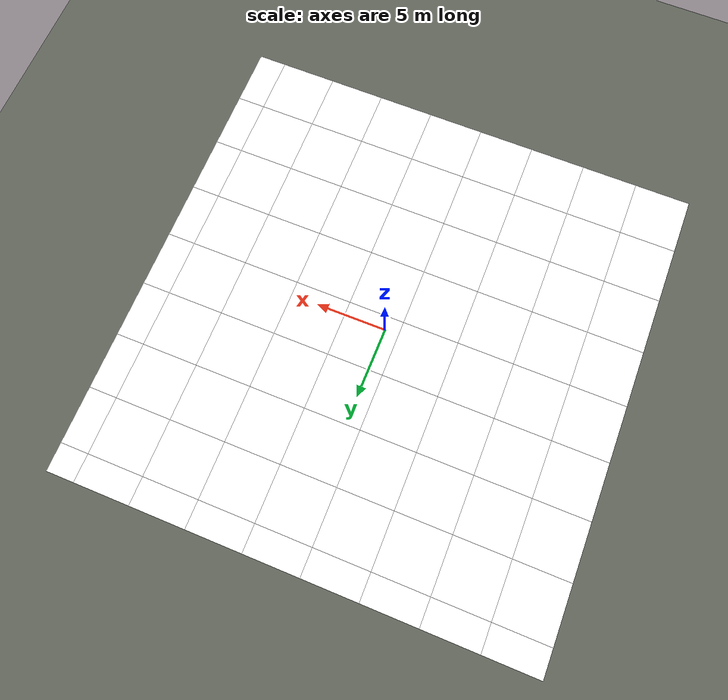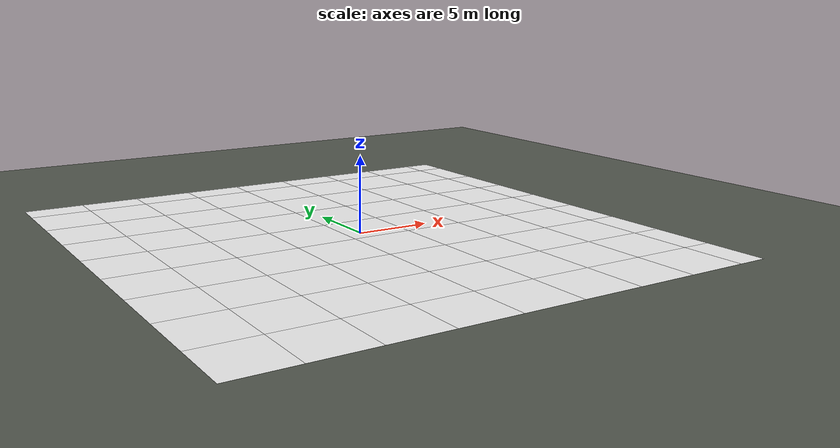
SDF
<sdf version="1.9">
 <world name="park_0">
  <model name="ground_plane">
   <static>true</static>
   <link name="link">
    <collision name="collision">
     <geometry><plane><normal>0 0 1</normal><size>300.000 300.000</size></plane></geometry>
     <surface><friction><ode><mu>1.0</mu><mu2>1.0</mu2></ode></friction></surface>
    </collision>
    <visual name="visual">
     <geometry><plane><normal>0 0 1</normal><size>300.000 300.000</size></plane></geometry>
     <material>
      <ambient>0.350 0.370 0.330 1</ambient>
      <diffuse>0.350 0.370 0.330 1</diffuse>
      <specular>0.08 0.08 0.08 1</specular>
     </material>
    </visual>
   </link>
  </model>
  <model name="ground_1">
   <static>true</static>
   <link name="link">
    <visual name="v0">
     <pose>-15.000 -15.000 0.004 0.0000 0.0000 0.0000</pose>
     <geometry><plane><normal>0 0 1</normal><size>4.000 4.000</size></plane></geometry>
     <material>
      <ambient>1.000 1.000 1.000 1</ambient>
      <diffuse>1.000 1.000 1.000 1</diffuse>
      <specular>0.08 0.08 0.08 1</specular>
      <pbr>
       <metal>
        <albedo_map>model://omnivla_textures/materials/textures/grass.png</albedo_map>
        <roughness>0.95</roughness>
        <metalness>0.0</metalness>
       </metal>
      </pbr>
     </material>
    </visual>
    <visual name="v1">
     <pose>-15.000 -11.000 0.004 0.0000 0.0000 0.0000</pose>
     <geometry><plane><normal>0 0 1</normal><size>4.000 4.000</size></plane></geometry>
     <material>
      <ambient>1.000 1.000 1.000 1</ambient>
      <diffuse>1.000 1.000 1.000 1</diffuse>
      <specular>0.08 0.08 0.08 1</specular>
      <pbr>
       <metal>
        <albedo_map>model://omnivla_textures/materials/textures/grass.png</albedo_map>
        <roughness>0.95</roughness>
        <metalness>0.0</metalness>
       </metal>
      </pbr>
     </material>
    </visual>
    <visual name="v2">
     <pose>-15.000 -7.000 0.004 0.0000 0.0000 0.0000</pose>
     <geometry><plane><normal>0 0 1</normal><size>4.000 4.000</size></plane></geometry>
     <material>
      <ambient>1.000 1.000 1.000 1</ambient>
      <diffuse>1.000 1.000 1.000 1</diffuse>
      <specular>0.08 0.08 0.08 1</specular>
      <pbr>
       <metal>
        <albedo_map>model://omnivla_textures/materials/textures/grass.png</albedo_map>
        <roughness>0.95</roughness>
        <metalness>0.0</metalness>
       </metal>
      </pbr>
     </material>
    </visual>
    <visual name="v3">
     <pose>-15.000 -3.000 0.004 0.0000 0.0000 0.0000</pose>
     <geometry><plane><normal>0 0 1</normal><size>4.000 4.000</size></plane></geometry>
     <material>
      <ambient>1.000 1.000 1.000 1</ambient>
      <diffuse>1.000 1.000 1.000 1</diffuse>
      <specular>0.08 0.08 0.08 1</specular>
      <pbr>
       <metal>
        <albedo_map>model://omnivla_textures/materials/textures/grass.png</albedo_map>
        <roughness>0.95</roughness>
        <metalness>0.0</metalness>
       </metal>
      </pbr>
     </material>
    </visual>
    <visual name="v4">
     <pose>-15.000 1.000 0.004 0.0000 0.0000 0.0000</pose>
     <geometry><plane><normal>0 0 1</normal><size>4.000 4.000</size></plane></geometry>
     <material>
      <ambient>1.000 1.000 1.000 1</ambient>
      <diffuse>1.000 1.000 1.000 1</diffuse>
      <specular>0.08 0.08 0.08 1</specular>
      <pbr>
       <metal>
        <albedo_map>model://omnivla_textures/materials/textures/grass.png</albedo_map>
        <roughness>0.95</roughness>
        <metalness>0.0</metalness>
       </metal>
      </pbr>
     </material>
    </visual>
    <visual name="v5">
     <pose>-15.000 5.000 0.004 0.0000 0.0000 0.0000</pose>
     <geometry><plane><normal>0 0 1</normal><size>4.000 4.000</size></plane></geometry>
     <material>
      <ambient>1.000 1.000 1.000 1</ambient>
      <diffuse>1.000 1.000 1.000 1</diffuse>
      <specular>0.08 0.08 0.08 1</specular>
      <pbr>
       <metal>
        <albedo_map>model://omnivla_textures/materials/textures/grass.png</albedo_map>
        <roughness>0.95</roughness>
        <metalness>0.0</metalness>
       </metal>
      </pbr>
     </material>
    </visual>
    <visual name="v6">
     <pose>-15.000 9.000 0.004 0.0000 0.0000 0.0000</pose>
     <geometry><plane><normal>0 0 1</normal><size>4.000 4.000</size></plane></geometry>
     <material>
      <ambient>1.000 1.000 1.000 1</ambient>
      <diffuse>1.000 1.000 1.000 1</diffuse>
      <specular>0.08 0.08 0.08 1</specular>
      <pbr>
       <metal>
        <albedo_map>model://omnivla_textures/materials/textures/grass.png</albedo_map>
        <roughness>0.95</roughness>
        <metalness>0.0</metalness>
       </metal>
      </pbr>
     </material>
    </visual>
    <visual name="v7">
     <pose>-15.000 13.000 0.004 0.0000 0.0000 0.0000</pose>
     <geometry><plane><normal>0 0 1</normal><size>4.000 4.000</size></plane></geometry>
     <material>
      <ambient>1.000 1.000 1.000 1</ambient>
      <diffuse>1.000 1.000 1.000 1</diffuse>
      <specular>0.08 0.08 0.08 1</specular>
      <pbr>
       <metal>
        <albedo_map>model://omnivla_textures/materials/textures/grass.png</albedo_map>
        <roughness>0.95</roughness>
        <metalness>0.0</metalness>
       </metal>
      </pbr>
     </material>
    </visual>
    <visual name="v8">
     <pose>-15.000 16.000 0.004 0.0000 0.0000 0.0000</pose>
     <geometry><plane><normal>0 0 1</normal><size>4.000 2.000</size></plane></geometry>
     <material>
      <ambient>1.000 1.000 1.000 1</ambient>
      <diffuse>1.000 1.000 1.000 1</diffuse>
      <specular>0.08 0.08 0.08 1</specular>
      <pbr>
       <metal>
        <albedo_map>model://omnivla_textures/materials/textures/grass.png</albedo_map>
        <roughness>0.95</roughness>
        <metalness>0.0</metalness>
       </metal>
      </pbr>
     </material>
    </visual>
    <visual name="v9">
     <pose>-11.000 -15.000 0.004 0.0000 0.0000 0.0000</pose>
     <geometry><plane><normal>0 0 1</normal><size>4.000 4.000</size></plane></geometry>
     <material>
      <ambient>1.000 1.000 1.000 1</ambient>
      <diffuse>1.000 1.000 1.000 1</diffuse>
      <specular>0.08 0.08 0.08 1</specular>
      <pbr>
       <metal>
        <albedo_map>model://omnivla_textures/materials/textures/grass.png</albedo_map>
        <roughness>0.95</roughness>
        <metalness>0.0</metalness>
       </metal>
      </pbr>
     </material>
    </visual>
    <visual name="v10">
     <pose>-11.000 -11.000 0.004 0.0000 0.0000 0.0000</pose>
     <geometry><plane><normal>0 0 1</normal><size>4.000 4.000</size></plane></geometry>
     <material>
      <ambient>1.000 1.000 1.000 1</ambient>
      <diffuse>1.000 1.000 1.000 1</diffuse>
      <specular>0.08 0.08 0.08 1</specular>
      <pbr>
       <metal>
        <albedo_map>model://omnivla_textures/materials/textures/grass.png</albedo_map>
        <roughness>0.95</roughness>
        <metalness>0.0</metalness>
       </metal>
      </pbr>
     </material>
    </visual>
    <visual name="v11">
     <pose>-11.000 -7.000 0.004 0.0000 0.0000 0.0000</pose>
     <geometry><plane><normal>0 0 1</normal><size>4.000 4.000</size></plane></geometry>
     <material>
      <ambient>1.000 1.000 1.000 1</ambient>
      <diffuse>1.000 1.000 1.000 1</diffuse>
      <specular>0.08 0.08 0.08 1</specular>
      <pbr>
       <metal>
        <albedo_map>model://omnivla_textures/materials/textures/grass.png</albedo_map>
        <roughness>0.95</roughness>
        <metalness>0.0</metalness>
       </metal>
      </pbr>
     </material>
    </visual>
    <visual name="v12">
     <pose>-11.000 -3.000 0.004 0.0000 0.0000 0.0000</pose>
     <geometry><plane><normal>0 0 1</normal><size>4.000 4.000</size></plane></geometry>
     <material>
      <ambient>1.000 1.000 1.000 1</ambient>
      <diffuse>1.000 1.000 1.000 1</diffuse>
      <specular>0.08 0.08 0.08 1</specular>
      <pbr>
       <metal>
        <albedo_map>model://omnivla_textures/materials/textures/grass.png</albedo_map>
        <roughness>0.95</roughness>
        <metalness>0.0</metalness>
       </metal>
      </pbr>
     </material>
    </visual>
    <visual name="v13">
     <pose>-11.000 1.000 0.004 0.0000 0.0000 0.0000</pose>
     <geometry><plane><normal>0 0 1</normal><size>4.000 4.000</size></plane></geometry>
     <material>
      <ambient>1.000 1.000 1.000 1</ambient>
      <diffuse>1.000 1.000 1.000 1</diffuse>
      <specular>0.08 0.08 0.08 1</specular>
      <pbr>
       <metal>
        <albedo_map>model://omnivla_textures/materials/textures/grass.png</albedo_map>
        <roughness>0.95</roughness>
        <metalness>0.0</metalness>
       </metal>
      </pbr>
     </material>
    </visual>
    <visual name="v14">
     <pose>-11.000 5.000 0.004 0.0000 0.0000 0.0000</pose>
     <geometry><plane><normal>0 0 1</normal><size>4.000 4.000</size></plane></geometry>
     <material>
      <ambient>1.000 1.000 1.000 1</ambient>
      <diffuse>1.000 1.000 1.000 1</diffuse>
      <specular>0.08 0.08 0.08 1</specular>
      <pbr>
       <metal>
        <albedo_map>model://omnivla_textures/materials/textures/grass.png</albedo_map>
        <roughness>0.95</roughness>
        <metalness>0.0</metalness>
       </metal>
      </pbr>
     </material>
    </visual>
    <visual name="v15">
     <pose>-11.000 9.000 0.004 0.0000 0.0000 0.0000</pose>
     <geometry><plane><normal>0 0 1</normal><size>4.000 4.000</size></plane></geometry>
     <material>
      <ambient>1.000 1.000 1.000 1</ambient>
      <diffuse>1.000 1.000 1.000 1</diffuse>
      <specular>0.08 0.08 0.08 1</specular>
      <pbr>
       <metal>
        <albedo_map>model://omnivla_textures/materials/textures/grass.png</albedo_map>
        <roughness>0.95</roughness>
        <metalness>0.0</metalness>
       </metal>
      </pbr>
     </material>
    </visual>
    <visual name="v16">
     <pose>-11.000 13.000 0.004 0.0000 0.0000 0.0000</pose>
     <geometry><plane><normal>0 0 1</normal><size>4.000 4.000</size></plane></geometry>
     <material>
      <ambient>1.000 1.000 1.000 1</ambient>
      <diffuse>1.000 1.000 1.000 1</diffuse>
      <specular>0.08 0.08 0.08 1</specular>
      <pbr>
       <metal>
        <albedo_map>model://omnivla_textures/materials/textures/grass.png</albedo_map>
        <roughness>0.95</roughness>
        <metalness>0.0</metalness>
       </metal>
      </pbr>
     </material>
    </visual>
    <visual name="v17">
     <pose>-11.000 16.000 0.004 0.0000 0.0000 0.0000</pose>
     <geometry><plane><normal>0 0 1</normal><size>4.000 2.000</size></plane></geometry>
     <material>
      <ambient>1.000 1.000 1.000 1</ambient>
      <diffuse>1.000 1.000 1.000 1</diffuse>
      <specular>0.08 0.08 0.08 1</specular>
      <pbr>
       <metal>
        <albedo_map>model://omnivla_textures/materials/textures/grass.png</albedo_map>
        <roughness>0.95</roughness>
        <metalness>0.0</metalness>
       </metal>
      </pbr>
     </material>
    </visual>
    <visual name="v18">
     <pose>-7.000 -15.000 0.004 0.0000 0.0000 0.0000</pose>
     <geometry><plane><normal>0 0 1</normal><size>4.000 4.000</size></plane></geometry>
     <material>
      <ambient>1.000 1.000 1.000 1</ambient>
      <diffuse>1.000 1.000 1.000 1</diffuse>
      <specular>0.08 0.08 0.08 1</specular>
      <pbr>
       <metal>
        <albedo_map>model://omnivla_textures/materials/textures/grass.png</albedo_map>
        <roughness>0.95</roughness>
        <metalness>0.0</metalness>
       </metal>
      </pbr>
     </material>
    </visual>
    <visual name="v19">
     <pose>-7.000 -11.000 0.004 0.0000 0.0000 0.0000</pose>
     <geometry><plane><normal>0 0 1</normal><size>4.000 4.000</size></plane></geometry>
     <material>
      <ambient>1.000 1.000 1.000 1</ambient>
      <diffuse>1.000 1.000 1.000 1</diffuse>
      <specular>0.08 0.08 0.08 1</specular>
      <pbr>
       <metal>
        <albedo_map>model://omnivla_textures/materials/textures/grass.png</albedo_map>
        <roughness>0.95</roughness>
        <metalness>0.0</metalness>
       </metal>
      </pbr>
     </material>
    </visual>
    <visual name="v20">
     <pose>-7.000 -7.000 0.004 0.0000 0.0000 0.0000</pose>
     <geometry><plane><normal>0 0 1</normal><size>4.000 4.000</size></plane></geometry>
     <material>
      <ambient>1.000 1.000 1.000 1</ambient>
      <diffuse>1.000 1.000 1.000 1</diffuse>
      <specular>0.08 0.08 0.08 1</specular>
      <pbr>
       <metal>
        <albedo_map>model://omnivla_textures/materials/textures/grass.png</albedo_map>
        <roughness>0.95</roughness>
        <metalness>0.0</metalness>
       </metal>
      </pbr>
     </material>
    </visual>
    <visual name="v21">
     <pose>-7.000 -3.000 0.004 0.0000 0.0000 0.0000</pose>
     <geometry><plane><normal>0 0 1</normal><size>4.000 4.000</size></plane></geometry>
     <material>
      <ambient>1.000 1.000 1.000 1</ambient>
      <diffuse>1.000 1.000 1.000 1</diffuse>
      <specular>0.08 0.08 0.08 1</specular>
      <pbr>
       <metal>
        <albedo_map>model://omnivla_textures/materials/textures/grass.png</albedo_map>
        <roughness>0.95</roughness>
        <metalness>0.0</metalness>
       </metal>
      </pbr>
     </material>
    </visual>
    <visual name="v22">
     <pose>-7.000 1.000 0.004 0.0000 0.0000 0.0000</pose>
     <geometry><plane><normal>0 0 1</normal><size>4.000 4.000</size></plane></geometry>
     <material>
      <ambient>1.000 1.000 1.000 1</ambient>
      <diffuse>1.000 1.000 1.000 1</diffuse>
      <specular>0.08 0.08 0.08 1</specular>
      <pbr>
       <metal>
        <albedo_map>model://omnivla_textures/materials/textures/grass.png</albedo_map>
        <roughness>0.95</roughness>
        <metalness>0.0</metalness>
       </metal>
      </pbr>
     </material>
    </visual>
    <visual name="v23">
     <pose>-7.000 5.000 0.004 0.0000 0.0000 0.0000</pose>
     <geometry><plane><normal>0 0 1</normal><size>4.000 4.000</size></plane></geometry>
     <material>
      <ambient>1.000 1.000 1.000 1</ambient>
      <diffuse>1.000 1.000 1.000 1</diffuse>
      <specular>0.08 0.08 0.08 1</specular>
      <pbr>
       <metal>
        <albedo_map>model://omnivla_textures/materials/textures/grass.png</albedo_map>
        <roughness>0.95</roughness>
        <metalness>0.0</metalness>
       </metal>
      </pbr>
     </material>
    </visual>
    <visual name="v24">
     <pose>-7.000 9.000 0.004 0.0000 0.0000 0.0000</pose>
     <geometry><plane><normal>0 0 1</normal><size>4.000 4.000</size></plane></geometry>
     <material>
      <ambient>1.000 1.000 1.000 1</ambient>
      <diffuse>1.000 1.000 1.000 1</diffuse>
      <specular>0.08 0.08 0.08 1</specular>
      <pbr>
       <metal>
        <albedo_map>model://omnivla_textures/materials/textures/grass.png</albedo_map>
        <roughness>0.95</roughness>
        <metalness>0.0</metalness>
       </metal>
      </pbr>
     </material>
    </visual>
    <visual name="v25">
     <pose>-7.000 13.000 0.004 0.0000 0.0000 0.0000</pose>
     <geometry><plane><normal>0 0 1</normal><size>4.000 4.000</size></plane></geometry>
     <material>
      <ambient>1.000 1.000 1.000 1</ambient>
      <diffuse>1.000 1.000 1.000 1</diffuse>
      <specular>0.08 0.08 0.08 1</specular>
      <pbr>
       <metal>
        <albedo_map>model://omnivla_textures/materials/textures/grass.png</albedo_map>
        <roughness>0.95</roughness>
        <metalness>0.0</metalness>
       </metal>
      </pbr>
     </material>
    </visual>
    <visual name="v26">
     <pose>-7.000 16.000 0.004 0.0000 0.0000 0.0000</pose>
     <geometry><plane><normal>0 0 1</normal><size>4.000 2.000</size></plane></geometry>
     <material>
      <ambient>1.000 1.000 1.000 1</ambient>
      <diffuse>1.000 1.000 1.000 1</diffuse>
      <specular>0.08 0.08 0.08 1</specular>
      <pbr>
       <metal>
        <albedo_map>model://omnivla_textures/materials/textures/grass.png</albedo_map>
        <roughness>0.95</roughness>
        <metalness>0.0</metalness>
       </metal>
      </pbr>
     </material>
    </visual>
    <visual name="v27">
     <pose>-3.000 -15.000 0.004 0.0000 0.0000 0.0000</pose>
     <geometry><plane><normal>0 0 1</normal><size>4.000 4.000</size></plane></geometry>
     <material>
      <ambient>1.000 1.000 1.000 1</ambient>
      <diffuse>1.000 1.000 1.000 1</diffuse>
      <specular>0.08 0.08 0.08 1</specular>
      <pbr>
       <metal>
        <albedo_map>model://omnivla_textures/materials/textures/grass.png</albedo_map>
        <roughness>0.95</roughness>
        <metalness>0.0</metalness>
       </metal>
      </pbr>
     </material>
    </visual>
    <visual name="v28">
     <pose>-3.000 -11.000 0.004 0.0000 0.0000 0.0000</pose>
     <geometry><plane><normal>0 0 1</normal><size>4.000 4.000</size></plane></geometry>
     <material>
      <ambient>1.000 1.000 1.000 1</ambient>
      <diffuse>1.000 1.000 1.000 1</diffuse>
      <specular>0.08 0.08 0.08 1</specular>
      <pbr>
       <metal>
        <albedo_map>model://omnivla_textures/materials/textures/grass.png</albedo_map>
        <roughness>0.95</roughness>
        <metalness>0.0</metalness>
       </metal>
      </pbr>
     </material>
    </visual>
    <visual name="v29">
     <pose>-3.000 -7.000 0.004 0.0000 0.0000 0.0000</pose>
     <geometry><plane><normal>0 0 1</normal><size>4.000 4.000</size></plane></geometry>
     <material>
      <ambient>1.000 1.000 1.000 1</ambient>
      <diffuse>1.000 1.000 1.000 1</diffuse>
      <specular>0.08 0.08 0.08 1</specular>
      <pbr>
       <metal>
        <albedo_map>model://omnivla_textures/materials/textures/grass.png</albedo_map>
        <roughness>0.95</roughness>
        <metalness>0.0</metalness>
       </metal>
      </pbr>
     </material>
    </visual>
    <visual name="v30">
     <pose>-3.000 -3.000 0.004 0.0000 0.0000 0.0000</pose>
     <geometry><plane><normal>0 0 1</normal><size>4.000 4.000</size></plane></geometry>
     <material>
      <ambient>1.000 1.000 1.000 1</ambient>
      <diffuse>1.000 1.000 1.000 1</diffuse>
      <specular>0.08 0.08 0.08 1</specular>
      <pbr>
       <metal>
        <albedo_map>model://omnivla_textures/materials/textures/grass.png</albedo_map>
        <roughness>0.95</roughness>
        <metalness>0.0</metalness>
       </metal>
      </pbr>
     </material>
    </visual>
    <visual name="v31">
     <pose>-3.000 1.000 0.004 0.0000 0.0000 0.0000</pose>
     <geometry><plane><normal>0 0 1</normal><size>4.000 4.000</size></plane></geometry>
     <material>
      <ambient>1.000 1.000 1.000 1</ambient>
      <diffuse>1.000 1.000 1.000 1</diffuse>
      <specular>0.08 0.08 0.08 1</specular>
      <pbr>
       <metal>
        <albedo_map>model://omnivla_textures/materials/textures/grass.png</albedo_map>
        <roughness>0.95</roughness>
        <metalness>0.0</metalness>
       </metal>
      </pbr>
     </material>
    </visual>
    <visual name="v32">
     <pose>-3.000 5.000 0.004 0.0000 0.0000 0.0000</pose>
     <geometry><plane><normal>0 0 1</normal><size>4.000 4.000</size></plane></geometry>
     <material>
      <ambient>1.000 1.000 1.000 1</ambient>
      <diffuse>1.000 1.000 1.000 1</diffuse>
      <specular>0.08 0.08 0.08 1</specular>
      <pbr>
       <metal>
        <albedo_map>model://omnivla_textures/materials/textures/grass.png</albedo_map>
        <roughness>0.95</roughness>
        <metalness>0.0</metalness>
       </metal>
      </pbr>
     </material>
    </visual>
    <visual name="v33">
     <pose>-3.000 9.000 0.004 0.0000 0.0000 0.0000</pose>
     <geometry><plane><normal>0 0 1</normal><size>4.000 4.000</size></plane></geometry>
     <material>
      <ambient>1.000 1.000 1.000 1</ambient>
      <diffuse>1.000 1.000 1.000 1</diffuse>
      <specular>0.08 0.08 0.08 1</specular>
      <pbr>
       <metal>
        <albedo_map>model://omnivla_textures/materials/textures/grass.png</albedo_map>
        <roughness>0.95</roughness>
        <metalness>0.0</metalness>
       </metal>
      </pbr>
     </material>
    </visual>
    <visual name="v34">
     <pose>-3.000 13.000 0.004 0.0000 0.0000 0.0000</pose>
     <geometry><plane><normal>0 0 1</normal><size>4.000 4.000</size></plane></geometry>
     <material>
      <ambient>1.000 1.000 1.000 1</ambient>
      <diffuse>1.000 1.000 1.000 1</diffuse>
      <specular>0.08 0.08 0.08 1</specular>
      <pbr>
       <metal>
        <albedo_map>model://omnivla_textures/materials/textures/grass.png</albedo_map>
        <roughness>0.95</roughness>
        <metalness>0.0</metalness>
       </metal>
      </pbr>
     </material>
    </visual>
    <visual name="v35">
     <pose>-3.000 16.000 0.004 0.0000 0.0000 0.0000</pose>
     <geometry><plane><normal>0 0 1</normal><size>4.000 2.000</size></plane></geometry>
     <material>
      <ambient>1.000 1.000 1.000 1</ambient>
      <diffuse>1.000 1.000 1.000 1</diffuse>
      <specular>0.08 0.08 0.08 1</specular>
      <pbr>
       <metal>
        <albedo_map>model://omnivla_textures/materials/textures/grass.png</albedo_map>
        <roughness>0.95</roughness>
        <metalness>0.0</metalness>
       </metal>
      </pbr>
     </material>
    </visual>
    <visual name="v36">
     <pose>1.000 -15.000 0.004 0.0000 0.0000 0.0000</pose>
     <geometry><plane><normal>0 0 1</normal><size>4.000 4.000</size></plane></geometry>
     <material>
      <ambient>1.000 1.000 1.000 1</ambient>
      <diffuse>1.000 1.000 1.000 1</diffuse>
      <specular>0.08 0.08 0.08 1</specular>
      <pbr>
       <metal>
        <albedo_map>model://omnivla_textures/materials/textures/grass.png</albedo_map>
        <roughness>0.95</roughness>
        <metalness>0.0</metalness>
       </metal>
      </pbr>
     </material>
    </visual>
    <visual name="v37">
     <pose>1.000 -11.000 0.004 0.0000 0.0000 0.0000</pose>
     <geometry><plane><normal>0 0 1</normal><size>4.000 4.000</size></plane></geometry>
     <material>
      <ambient>1.000 1.000 1.000 1</ambient>
      <diffuse>1.000 1.000 1.000 1</diffuse>
      <specular>0.08 0.08 0.08 1</specular>
      <pbr>
       <metal>
        <albedo_map>model://omnivla_textures/materials/textures/grass.png</albedo_map>
        <roughness>0.95</roughness>
        <metalness>0.0</metalness>
       </metal>
      </pbr>
     </material>
    </visual>
    <visual name="v38">
     <pose>1.000 -7.000 0.004 0.0000 0.0000 0.0000</pose>
     <geometry><plane><normal>0 0 1</normal><size>4.000 4.000</size></plane></geometry>
     <material>
      <ambient>1.000 1.000 1.000 1</ambient>
      <diffuse>1.000 1.000 1.000 1</diffuse>
      <specular>0.08 0.08 0.08 1</specular>
      <pbr>
       <metal>
        <albedo_map>model://omnivla_textures/materials/textures/grass.png</albedo_map>
        <roughness>0.95</roughness>
        <metalness>0.0</metalness>
       </metal>
      </pbr>
     </material>
    </visual>
    <visual name="v39">
     <pose>1.000 -3.000 0.004 0.0000 0.0000 0.0000</pose>
     <geometry><plane><normal>0 0 1</normal><size>4.000 4.000</size></plane></geometry>
     <material>
      <ambient>1.000 1.000 1.000 1</ambient>
      <diffuse>1.000 1.000 1.000 1</diffuse>
      <specular>0.08 0.08 0.08 1</specular>
      <pbr>
       <metal>
        <albedo_map>model://omnivla_textures/materials/textures/grass.png</albedo_map>
        <roughness>0.95</roughness>
        <metalness>0.0</metalness>
       </metal>
      </pbr>
     </material>
    </visual>
    <visual name="v40">
     <pose>1.000 1.000 0.004 0.0000 0.0000 0.0000</pose>
     <geometry><plane><normal>0 0 1</normal><size>4.000 4.000</size></plane></geometry>
     <material>
      <ambient>1.000 1.000 1.000 1</ambient>
      <diffuse>1.000 1.000 1.000 1</diffuse>
      <specular>0.08 0.08 0.08 1</specular>
      <pbr>
       <metal>
        <albedo_map>model://omnivla_textures/materials/textures/grass.png</albedo_map>
        <roughness>0.95</roughness>
        <metalness>0.0</metalness>
       </metal>
      </pbr>
     </material>
    </visual>
    <visual name="v41">
     <pose>1.000 5.000 0.004 0.0000 0.0000 0.0000</pose>
     <geometry><plane><normal>0 0 1</normal><size>4.000 4.000</size></plane></geometry>
     <material>
      <ambient>1.000 1.000 1.000 1</ambient>
      <diffuse>1.000 1.000 1.000 1</diffuse>
      <specular>0.08 0.08 0.08 1</specular>
      <pbr>
       <metal>
        <albedo_map>model://omnivla_textures/materials/textures/grass.png</albedo_map>
        <roughness>0.95</roughness>
        <metalness>0.0</metalness>
       </metal>
      </pbr>
     </material>
    </visual>
    <visual name="v42">
     <pose>1.000 9.000 0.004 0.0000 0.0000 0.0000</pose>
     <geometry><plane><normal>0 0 1</normal><size>4.000 4.000</size></plane></geometry>
     <material>
      <ambient>1.000 1.000 1.000 1</ambient>
      <diffuse>1.000 1.000 1.000 1</diffuse>
      <specular>0.08 0.08 0.08 1</specular>
      <pbr>
       <metal>
        <albedo_map>model://omnivla_textures/materials/textures/grass.png</albedo_map>
        <roughness>0.95</roughness>
        <metalness>0.0</metalness>
       </metal>
      </pbr>
     </material>
    </visual>
    <visual name="v43">
     <pose>1.000 13.000 0.004 0.0000 0.0000 0.0000</pose>
     <geometry><plane><normal>0 0 1</normal><size>4.000 4.000</size></plane></geometry>
     <material>
      <ambient>1.000 1.000 1.000 1</ambient>
      <diffuse>1.000 1.000 1.000 1</diffuse>
      <specular>0.08 0.08 0.08 1</specular>
      <pbr>
       <metal>
        <albedo_map>model://omnivla_textures/materials/textures/grass.png</albedo_map>
        <roughness>0.95</roughness>
        <metalness>0.0</metalness>
       </metal>
      </pbr>
     </material>
    </visual>
    <visual name="v44">
     <pose>1.000 16.000 0.004 0.0000 0.0000 0.0000</pose>
     <geometry><plane><normal>0 0 1</normal><size>4.000 2.000</size></plane></geometry>
     <material>
      <ambient>1.000 1.000 1.000 1</ambient>
      <diffuse>1.000 1.000 1.000 1</diffuse>
      <specular>0.08 0.08 0.08 1</specular>
      <pbr>
       <metal>
        <albedo_map>model://omnivla_textures/materials/textures/grass.png</albedo_map>
        <roughness>0.95</roughness>
        <metalness>0.0</metalness>
       </metal>
      </pbr>
     </material>
    </visual>
    <visual name="v45">
     <pose>5.000 -15.000 0.004 0.0000 0.0000 0.0000</pose>
     <geometry><plane><normal>0 0 1</normal><size>4.000 4.000</size></plane></geometry>
     <material>
      <ambient>1.000 1.000 1.000 1</ambient>
      <diffuse>1.000 1.000 1.000 1</diffuse>
      <specular>0.08 0.08 0.08 1</specular>
      <pbr>
       <metal>
        <albedo_map>model://omnivla_textures/materials/textures/grass.png</albedo_map>
        <roughness>0.95</roughness>
        <metalness>0.0</metalness>
       </metal>
      </pbr>
     </material>
    </visual>
    <visual name="v46">
     <pose>5.000 -11.000 0.004 0.0000 0.0000 0.0000</pose>
     <geometry><plane><normal>0 0 1</normal><size>4.000 4.000</size></plane></geometry>
     <material>
      <ambient>1.000 1.000 1.000 1</ambient>
      <diffuse>1.000 1.000 1.000 1</diffuse>
      <specular>0.08 0.08 0.08 1</specular>
      <pbr>
       <metal>
        <albedo_map>model://omnivla_textures/materials/textures/grass.png</albedo_map>
        <roughness>0.95</roughness>
        <metalness>0.0</metalness>
       </metal>
      </pbr>
     </material>
    </visual>
    <visual name="v47">
     <pose>5.000 -7.000 0.004 0.0000 0.0000 0.0000</pose>
     <geometry><plane><normal>0 0 1</normal><size>4.000 4.000</size></plane></geometry>
     <material>
      <ambient>1.000 1.000 1.000 1</ambient>
      <diffuse>1.000 1.000 1.000 1</diffuse>
      <specular>0.08 0.08 0.08 1</specular>
      <pbr>
       <metal>
        <albedo_map>model://omnivla_textures/materials/textures/grass.png</albedo_map>
        <roughness>0.95</roughness>
        <metalness>0.0</metalness>
       </metal>
      </pbr>
     </material>
    </visual>
    <visual name="v48">
     <pose>5.000 -3.000 0.004 0.0000 0.0000 0.0000</pose>
     <geometry><plane><normal>0 0 1</normal><size>4.000 4.000</size></plane></geometry>
     <material>
      <ambient>1.000 1.000 1.000 1</ambient>
      <diffuse>1.000 1.000 1.000 1</diffuse>
      <specular>0.08 0.08 0.08 1</specular>
      <pbr>
       <metal>
        <albedo_map>model://omnivla_textures/materials/textures/grass.png</albedo_map>
        <roughness>0.95</roughness>
        <metalness>0.0</metalness>
       </metal>
      </pbr>
     </material>
    </visual>
    <visual name="v49">
     <pose>5.000 1.000 0.004 0.0000 0.0000 0.0000</pose>
     <geometry><plane><normal>0 0 1</normal><size>4.000 4.000</size></plane></geometry>
     <material>
      <ambient>1.000 1.000 1.000 1</ambient>
      <diffuse>1.000 1.000 1.000 1</diffuse>
      <specular>0.08 0.08 0.08 1</specular>
      <pbr>
       <metal>
        <albedo_map>model://omnivla_textures/materials/textures/grass.png</albedo_map>
        <roughness>0.95</roughness>
        <metalness>0.0</metalness>
       </metal>
      </pbr>
     </material>
    </visual>
    <visual name="v50">
     <pose>5.000 5.000 0.004 0.0000 0.0000 0.0000</pose>
     <geometry><plane><normal>0 0 1</normal><size>4.000 4.000</size></plane></geometry>
     <material>
      <ambient>1.000 1.000 1.000 1</ambient>
      <diffuse>1.000 1.000 1.000 1</diffuse>
      <specular>0.08 0.08 0.08 1</specular>
      <pbr>
       <metal>
        <albedo_map>model://omnivla_textures/materials/textures/grass.png</albedo_map>
        <roughness>0.95</roughness>
        <metalness>0.0</metalness>
       </metal>
      </pbr>
     </material>
    </visual>
    <visual name="v51">
     <pose>5.000 9.000 0.004 0.0000 0.0000 0.0000</pose>
     <geometry><plane><normal>0 0 1</normal><size>4.000 4.000</size></plane></geometry>
     <material>
      <ambient>1.000 1.000 1.000 1</ambient>
      <diffuse>1.000 1.000 1.000 1</diffuse>
      <specular>0.08 0.08 0.08 1</specular>
      <pbr>
       <metal>
        <albedo_map>model://omnivla_textures/materials/textures/grass.png</albedo_map>
        <roughness>0.95</roughness>
        <metalness>0.0</metalness>
       </metal>
      </pbr>
     </material>
    </visual>
    <visual name="v52">
     <pose>5.000 13.000 0.004 0.0000 0.0000 0.0000</pose>
     <geometry><plane><normal>0 0 1</normal><size>4.000 4.000</size></plane></geometry>
     <material>
      <ambient>1.000 1.000 1.000 1</ambient>
      <diffuse>1.000 1.000 1.000 1</diffuse>
      <specular>0.08 0.08 0.08 1</specular>
      <pbr>
       <metal>
        <albedo_map>model://omnivla_textures/materials/textures/grass.png</albedo_map>
        <roughness>0.95</roughness>
        <metalness>0.0</metalness>
       </metal>
      </pbr>
     </material>
    </visual>
    <visual name="v53">
     <pose>5.000 16.000 0.004 0.0000 0.0000 0.0000</pose>
     <geometry><plane><normal>0 0 1</normal><size>4.000 2.000</size></plane></geometry>
     <material>
      <ambient>1.000 1.000 1.000 1</ambient>
      <diffuse>1.000 1.000 1.000 1</diffuse>
      <specular>0.08 0.08 0.08 1</specular>
      <pbr>
       <metal>
        <albedo_map>model://omnivla_textures/materials/textures/grass.png</albedo_map>
        <roughness>0.95</roughness>
        <metalness>0.0</metalness>
       </metal>
      </pbr>
     </material>
    </visual>
    <visual name="v54">
     <pose>9.000 -15.000 0.004 0.0000 0.0000 0.0000</pose>
     <geometry><plane><normal>0 0 1</normal><size>4.000 4.000</size></plane></geometry>
     <material>
      <ambient>1.000 1.000 1.000 1</ambient>
      <diffuse>1.000 1.000 1.000 1</diffuse>
      <specular>0.08 0.08 0.08 1</specular>
      <pbr>
       <metal>
        <albedo_map>model://omnivla_textures/materials/textures/asphalt.png</albedo_map>
        <roughness>0.95</roughness>
        <metalness>0.0</metalness>
       </metal>
      </pbr>
     </material>
    </visual>
    <visual name="v55">
     <pose>9.000 -11.000 0.004 0.0000 0.0000 0.0000</pose>
     <geometry><plane><normal>0 0 1</normal><size>4.000 4.000</size></plane></geometry>
     <material>
      <ambient>1.000 1.000 1.000 1</ambient>
      <diffuse>1.000 1.000 1.000 1</diffuse>
      <specular>0.08 0.08 0.08 1</specular>
      <pbr>
       <metal>
        <albedo_map>model://omnivla_textures/materials/textures/asphalt.png</albedo_map>
        <roughness>0.95</roughness>
        <metalness>0.0</metalness>
       </metal>
      </pbr>
     </material>
    </visual>
    <visual name="v56">
     <pose>9.000 -7.000 0.004 0.0000 0.0000 0.0000</pose>
     <geometry><plane><normal>0 0 1</normal><size>4.000 4.000</size></plane></geometry>
     <material>
      <ambient>1.000 1.000 1.000 1</ambient>
      <diffuse>1.000 1.000 1.000 1</diffuse>
      <specular>0.08 0.08 0.08 1</specular>
      <pbr>
       <metal>
        <albedo_map>model://omnivla_textures/materials/textures/grass.png</albedo_map>
        <roughness>0.95</roughness>
        <metalness>0.0</metalness>
       </metal>
      </pbr>
     </material>
    </visual>
    <visual name="v57">
     <pose>9.000 -3.000 0.004 0.0000 0.0000 0.0000</pose>
     <geometry><plane><normal>0 0 1</normal><size>4.000 4.000</size></plane></geometry>
     <material>
      <ambient>1.000 1.000 1.000 1</ambient>
      <diffuse>1.000 1.000 1.000 1</diffuse>
      <specular>0.08 0.08 0.08 1</specular>
      <pbr>
       <metal>
        <albedo_map>model://omnivla_textures/materials/textures/grass.png</albedo_map>
        <roughness>0.95</roughness>
        <metalness>0.0</metalness>
       </metal>
      </pbr>
     </material>
    </visual>
    <visual name="v58">
     <pose>9.000 1.000 0.004 0.0000 0.0000 0.0000</pose>
     <geometry><plane><normal>0 0 1</normal><size>4.000 4.000</size></plane></geometry>
     <material>
      <ambient>1.000 1.000 1.000 1</ambient>
      <diffuse>1.000 1.000 1.000 1</diffuse>
      <specular>0.08 0.08 0.08 1</specular>
      <pbr>
       <metal>
        <albedo_map>model://omnivla_textures/materials/textures/grass.png</albedo_map>
        <roughness>0.95</roughness>
        <metalness>0.0</metalness>
       </metal>
      </pbr>
     </material>
    </visual>
    <visual name="v59">
     <pose>9.000 5.000 0.004 0.0000 0.0000 0.0000</pose>
     <geometry><plane><normal>0 0 1</normal><size>4.000 4.000</size></plane></geometry>
     <material>
      <ambient>1.000 1.000 1.000 1</ambient>
      <diffuse>1.000 1.000 1.000 1</diffuse>
      <specular>0.08 0.08 0.08 1</specular>
      <pbr>
       <metal>
        <albedo_map>model://omnivla_textures/materials/textures/grass.png</albedo_map>
        <roughness>0.95</roughness>
        <metalness>0.0</metalness>
       </metal>
      </pbr>
     </material>
    </visual>
    <visual name="v60">
     <pose>9.000 9.000 0.004 0.0000 0.0000 0.0000</pose>
     <geometry><plane><normal>0 0 1</normal><size>4.000 4.000</size></plane></geometry>
     <material>
      <ambient>1.000 1.000 1.000 1</ambient>
      <diffuse>1.000 1.000 1.000 1</diffuse>
      <specular>0.08 0.08 0.08 1</specular>
      <pbr>
       <metal>
        <albedo_map>model://omnivla_textures/materials/textures/grass.png</albedo_map>
        <roughness>0.95</roughness>
        <metalness>0.0</metalness>
       </metal>
      </pbr>
     </material>
    </visual>
    <visual name="v61">
     <pose>9.000 13.000 0.004 0.0000 0.0000 0.0000</pose>
     <geometry><plane><normal>0 0 1</normal><size>4.000 4.000</size></plane></geometry>
     <material>
      <ambient>1.000 1.000 1.000 1</ambient>
      <diffuse>1.000 1.000 1.000 1</diffuse>
      <specular>0.08 0.08 0.08 1</specular>
      <pbr>
       <metal>
        <albedo_map>model://omnivla_textures/materials/textures/grass.png</albedo_map>
        <roughness>0.95</roughness>
        <metalness>0.0</metalness>
       </metal>
      </pbr>
     </material>
    </visual>
    <visual name="v62">
     <pose>9.000 16.000 0.004 0.0000 0.0000 0.0000</pose>
     <geometry><plane><normal>0 0 1</normal><size>4.000 2.000</size></plane></geometry>
     <material>
      <ambient>1.000 1.000 1.000 1</ambient>
      <diffuse>1.000 1.000 1.000 1</diffuse>
      <specular>0.08 0.08 0.08 1</specular>
      <pbr>
       <metal>
        <albedo_map>model://omnivla_textures/materials/textures/grass.png</albedo_map>
        <roughness>0.95</roughness>
        <metalness>0.0</metalness>
       </metal>
      </pbr>
     </material>
    </visual>
    <visual name="v63">
     <pose>13.000 -15.000 0.004 0.0000 0.0000 0.0000</pose>
     <geometry><plane><normal>0 0 1</normal><size>4.000 4.000</size></plane></geometry>
     <material>
      <ambient>1.000 1.000 1.000 1</ambient>
      <diffuse>1.000 1.000 1.000 1</diffuse>
      <specular>0.08 0.08 0.08 1</specular>
      <pbr>
       <metal>
        <albedo_map>model://omnivla_textures/materials/textures/asphalt.png</albedo_map>
        <roughness>0.95</roughness>
        <metalness>0.0</metalness>
       </metal>
      </pbr>
     </material>
    </visual>
    <visual name="v64">
     <pose>13.000 -11.000 0.004 0.0000 0.0000 0.0000</pose>
     <geometry><plane><normal>0 0 1</normal><size>4.000 4.000</size></plane></geometry>
     <material>
      <ambient>1.000 1.000 1.000 1</ambient>
      <diffuse>1.000 1.000 1.000 1</diffuse>
      <specular>0.08 0.08 0.08 1</specular>
      <pbr>
       <metal>
        <albedo_map>model://omnivla_textures/materials/textures/asphalt.png</albedo_map>
        <roughness>0.95</roughness>
        <metalness>0.0</metalness>
       </metal>
      </pbr>
     </material>
    </visual>
    <visual name="v65">
     <pose>13.000 -7.000 0.004 0.0000 0.0000 0.0000</pose>
     <geometry><plane><normal>0 0 1</normal><size>4.000 4.000</size></plane></geometry>
     <material>
      <ambient>1.000 1.000 1.000 1</ambient>
      <diffuse>1.000 1.000 1.000 1</diffuse>
      <specular>0.08 0.08 0.08 1</specular>
      <pbr>
       <metal>
        <albedo_map>model://omnivla_textures/materials/textures/grass.png</albedo_map>
        <roughness>0.95</roughness>
        <metalness>0.0</metalness>
       </metal>
      </pbr>
     </material>
    </visual>
    <visual name="v66">
     <pose>13.000 -3.000 0.004 0.0000 0.0000 0.0000</pose>
     <geometry><plane><normal>0 0 1</normal><size>4.000 4.000</size></plane></geometry>
     <material>
      <ambient>1.000 1.000 1.000 1</ambient>
      <diffuse>1.000 1.000 1.000 1</diffuse>
      <specular>0.08 0.08 0.08 1</specular>
      <pbr>
       <metal>
        <albedo_map>model://omnivla_textures/materials/textures/grass.png</albedo_map>
        <roughness>0.95</roughness>
        <metalness>0.0</metalness>
       </metal>
      </pbr>
     </material>
    </visual>
    <visual name="v67">
     <pose>13.000 1.000 0.004 0.0000 0.0000 0.0000</pose>
     <geometry><plane><normal>0 0 1</normal><size>4.000 4.000</size></plane></geometry>
     <material>
      <ambient>1.000 1.000 1.000 1</ambient>
      <diffuse>1.000 1.000 1.000 1</diffuse>
      <specular>0.08 0.08 0.08 1</specular>
      <pbr>
       <metal>
        <albedo_map>model://omnivla_textures/materials/textures/grass.png</albedo_map>
        <roughness>0.95</roughness>
        <metalness>0.0</metalness>
       </metal>
      </pbr>
     </material>
    </visual>
    <visual name="v68">
     <pose>13.000 5.000 0.004 0.0000 0.0000 0.0000</pose>
     <geometry><plane><normal>0 0 1</normal><size>4.000 4.000</size></plane></geometry>
     <material>
      <ambient>1.000 1.000 1.000 1</ambient>
      <diffuse>1.000 1.000 1.000 1</diffuse>
      <specular>0.08 0.08 0.08 1</specular>
      <pbr>
       <metal>
        <albedo_map>model://omnivla_textures/materials/textures/grass.png</albedo_map>
        <roughness>0.95</roughness>
        <metalness>0.0</metalness>
       </metal>
      </pbr>
     </material>
    </visual>
    <visual name="v69">
     <pose>13.000 9.000 0.004 0.0000 0.0000 0.0000</pose>
     <geometry><plane><normal>0 0 1</normal><size>4.000 4.000</size></plane></geometry>
     <material>
      <ambient>1.000 1.000 1.000 1</ambient>
      <diffuse>1.000 1.000 1.000 1</diffuse>
      <specular>0.08 0.08 0.08 1</specular>
      <pbr>
       <metal>
        <albedo_map>model://omnivla_textures/materials/textures/grass.png</albedo_map>
        <roughness>0.95</roughness>
        <metalness>0.0</metalness>
       </metal>
      </pbr>
     </material>
    </visual>
    <visual name="v70">
     <pose>13.000 13.000 0.004 0.0000 0.0000 0.0000</pose>
     <geometry><plane><normal>0 0 1</normal><size>4.000 4.000</size></plane></geometry>
     <material>
      <ambient>1.000 1.000 1.000 1</ambient>
      <diffuse>1.000 1.000 1.000 1</diffuse>
      <specular>0.08 0.08 0.08 1</specular>
      <pbr>
       <metal>
        <albedo_map>model://omnivla_textures/materials/textures/grass.png</albedo_map>
        <roughness>0.95</roughness>
        <metalness>0.0</metalness>
       </metal>
      </pbr>
     </material>
    </visual>
    <visual name="v71">
     <pose>13.000 16.000 0.004 0.0000 0.0000 0.0000</pose>
     <geometry><plane><normal>0 0 1</normal><size>4.000 2.000</size></plane></geometry>
     <material>
      <ambient>1.000 1.000 1.000 1</ambient>
      <diffuse>1.000 1.000 1.000 1</diffuse>
      <specular>0.08 0.08 0.08 1</specular>
      <pbr>
       <metal>
        <albedo_map>model://omnivla_textures/materials/textures/grass.png</albedo_map>
        <roughness>0.95</roughness>
        <metalness>0.0</metalness>
       </metal>
      </pbr>
     </material>
    </visual>
    <visual name="v72">
     <pose>16.000 -15.000 0.004 0.0000 0.0000 0.0000</pose>
     <geometry><plane><normal>0 0 1</normal><size>2.000 4.000</size></plane></geometry>
     <material>
      <ambient>1.000 1.000 1.000 1</ambient>
      <diffuse>1.000 1.000 1.000 1</diffuse>
      <specular>0.08 0.08 0.08 1</specular>
      <pbr>
       <metal>
        <albedo_map>model://omnivla_textures/materials/textures/grass.png</albedo_map>
        <roughness>0.95</roughness>
        <metalness>0.0</metalness>
       </metal>
      </pbr>
     </material>
    </visual>
    <visual name="v73">
     <pose>16.000 -11.000 0.004 0.0000 0.0000 0.0000</pose>
     <geometry><plane><normal>0 0 1</normal><size>2.000 4.000</size></plane></geometry>
     <material>
      <ambient>1.000 1.000 1.000 1</ambient>
      <diffuse>1.000 1.000 1.000 1</diffuse>
      <specular>0.08 0.08 0.08 1</specular>
      <pbr>
       <metal>
        <albedo_map>model://omnivla_textures/materials/textures/grass.png</albedo_map>
        <roughness>0.95</roughness>
        <metalness>0.0</metalness>
       </metal>
      </pbr>
     </material>
    </visual>
    <visual name="v74">
     <pose>16.000 -7.000 0.004 0.0000 0.0000 0.0000</pose>
     <geometry><plane><normal>0 0 1</normal><size>2.000 4.000</size></plane></geometry>
     <material>
      <ambient>1.000 1.000 1.000 1</ambient>
      <diffuse>1.000 1.000 1.000 1</diffuse>
      <specular>0.08 0.08 0.08 1</specular>
      <pbr>
       <metal>
        <albedo_map>model://omnivla_textures/materials/textures/grass.png</albedo_map>
        <roughness>0.95</roughness>
        <metalness>0.0</metalness>
       </metal>
      </pbr>
     </material>
    </visual>
    <visual name="v75">
     <pose>16.000 -3.000 0.004 0.0000 0.0000 0.0000</pose>
     <geometry><plane><normal>0 0 1</normal><size>2.000 4.000</size></plane></geometry>
     <material>
      <ambient>1.000 1.000 1.000 1</ambient>
      <diffuse>1.000 1.000 1.000 1</diffuse>
      <specular>0.08 0.08 0.08 1</specular>
      <pbr>
       <metal>
        <albedo_map>model://omnivla_textures/materials/textures/grass.png</albedo_map>
        <roughness>0.95</roughness>
        <metalness>0.0</metalness>
       </metal>
      </pbr>
     </material>
    </visual>
    <visual name="v76">
     <pose>16.000 1.000 0.004 0.0000 0.0000 0.0000</pose>
     <geometry><plane><normal>0 0 1</normal><size>2.000 4.000</size></plane></geometry>
     <material>
      <ambient>1.000 1.000 1.000 1</ambient>
      <diffuse>1.000 1.000 1.000 1</diffuse>
      <specular>0.08 0.08 0.08 1</specular>
      <pbr>
       <metal>
        <albedo_map>model://omnivla_textures/materials/textures/grass.png</albedo_map>
        <roughness>0.95</roughness>
        <metalness>0.0</metalness>
       </metal>
      </pbr>
     </material>
    </visual>
    <visual name="v77">
     <pose>16.000 5.000 0.004 0.0000 0.0000 0.0000</pose>
     <geometry><plane><normal>0 0 1</normal><size>2.000 4.000</size></plane></geometry>
     <material>
      <ambient>1.000 1.000 1.000 1</ambient>
      <diffuse>1.000 1.000 1.000 1</diffuse>
      <specular>0.08 0.08 0.08 1</specular>
      <pbr>
       <metal>
        <albedo_map>model://omnivla_textures/materials/textures/grass.png</albedo_map>
        <roughness>0.95</roughness>
        <metalness>0.0</metalness>
       </metal>
      </pbr>
     </material>
    </visual>
    <visual name="v78">
     <pose>16.000 9.000 0.004 0.0000 0.0000 0.0000</pose>
     <geometry><plane><normal>0 0 1</normal><size>2.000 4.000</size></plane></geometry>
     <material>
      <ambient>1.000 1.000 1.000 1</ambient>
      <diffuse>1.000 1.000 1.000 1</diffuse>
      <specular>0.08 0.08 0.08 1</specular>
      <pbr>
       <metal>
        <albedo_map>model://omnivla_textures/materials/textures/grass.png</albedo_map>
        <roughness>0.95</roughness>
        <metalness>0.0</metalness>
       </metal>
      </pbr>
     </material>
    </visual>
    <visual name="v79">
     <pose>16.000 13.000 0.004 0.0000 0.0000 0.0000</pose>
     <geometry><plane><normal>0 0 1</normal><size>2.000 4.000</size></plane></geometry>
     <material>
      <ambient>1.000 1.000 1.000 1</ambient>
      <diffuse>1.000 1.000 1.000 1</diffuse>
      <specular>0.08 0.08 0.08 1</specular>
      <pbr>
       <metal>
        <albedo_map>model://omnivla_textures/materials/textures/grass.png</albedo_map>
        <roughness>0.95</roughness>
        <metalness>0.0</metalness>
       </metal>
      </pbr>
     </material>
    </visual>
    <visual name="v80">
     <pose>16.000 16.000 0.004 0.0000 0.0000 0.0000</pose>
     <geometry><plane><normal>0 0 1</normal><size>2.000 2.000</size></plane></geometry>
     <material>
      <ambient>1.000 1.000 1.000 1</ambient>
      <diffuse>1.000 1.000 1.000 1</diffuse>
      <specular>0.08 0.08 0.08 1</specular>
      <pbr>
       <metal>
        <albedo_map>model://omnivla_textures/materials/textures/grass.png</albedo_map>
        <roughness>0.95</roughness>
        <metalness>0.0</metalness>
       </metal>
      </pbr>
     </material>
    </visual>
   </link>
  </model>
 </world>
</sdf>
